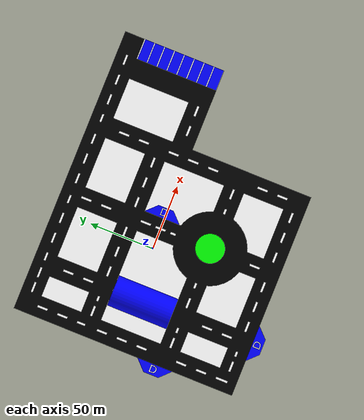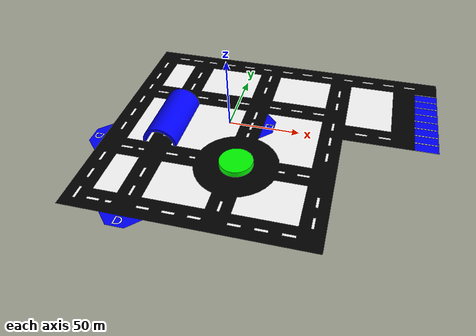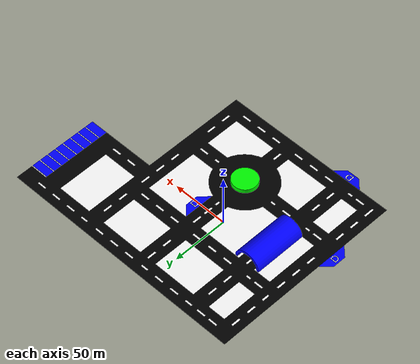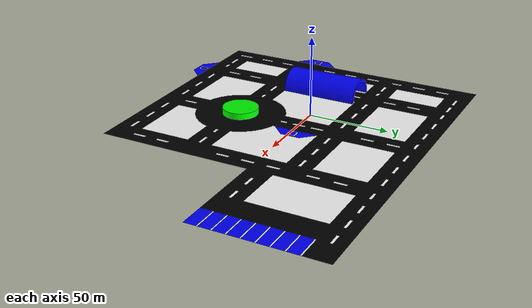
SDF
<?xml version="1.0"?>
<sdf version="1.6">
  <world name="map_world">
    <include><uri>model://sun</uri></include>
    <include>
      <uri>model://siyahlar</uri>
      <pose>0 0 0.001 0 0 0</pose>
    </include>
    <include>
      <uri>model://beyazlar</uri>
      <pose>0 0 0.002 0 0 0</pose>
    </include>
    <include>
      <uri>model://maviler</uri>
      <pose>0 0 0.003 0 0 0</pose>
    </include>
    <include>
      <uri>model://yesil</uri>
      <pose>0 0 0.004 0 0 0</pose>
    </include>
  </world>
</sdf>

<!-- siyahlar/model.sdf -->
<sdf version="1.6">
  <model name="siyahlar">
    <static>true</static>
    <link name="link">
      <visual name="visual">
        <geometry><mesh><uri>model://siyahlar/meshes/siyahlar.dae</uri></mesh></geometry>
        <material><ambient>0 0 0 1</ambient><diffuse>0 0 0 1</diffuse></material>
      </visual>
      <collision name="collision">
        <geometry><mesh><uri>model://siyahlar/meshes/siyahlar.dae</uri></mesh></geometry>
      </collision>
    </link>
  </model>
</sdf>

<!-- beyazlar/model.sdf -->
<sdf version="1.6">
  <model name="beyazlar">
    <static>true</static>
    <link name="link">
      <visual name="visual">
        <geometry><mesh><uri>model://beyazlar/meshes/beyazlar.dae</uri></mesh></geometry>
        <material><ambient>1 1 1 1</ambient><diffuse>1 1 1 1</diffuse></material>
      </visual>
      <collision name="collision">
        <geometry><mesh><uri>model://beyazlar/meshes/beyazlar.dae</uri></mesh></geometry>
      </collision>
    </link>
  </model>
</sdf>

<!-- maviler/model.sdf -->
<sdf version="1.6">
  <model name="maviler">
    <static>true</static>
    <link name="link">
      <visual name="visual">
        <geometry><mesh><uri>model://maviler/meshes/mavi.dae</uri></mesh></geometry>
        <material><ambient>0 0 1 1</ambient><diffuse>0 0 1 1</diffuse></material>
      </visual>
      <collision name="collision">
        <geometry><mesh><uri>model://maviler/meshes/mavi.dae</uri></mesh></geometry>
      </collision>
    </link>
  </model>
</sdf>

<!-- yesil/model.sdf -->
<sdf version="1.6">
  <model name="yesil">
    <static>true</static>
    <link name="link">
      <visual name="visual">
        <geometry><mesh><uri>model://yesil/meshes/yesil.dae</uri></mesh></geometry>
        <material><ambient>0 1 0 1</ambient><diffuse>0 1 0 1</diffuse></material>
      </visual>
      <collision name="collision">
        <geometry><mesh><uri>model://yesil/meshes/yesil.dae</uri></mesh></geometry>
      </collision>
    </link>
  </model>
</sdf>
